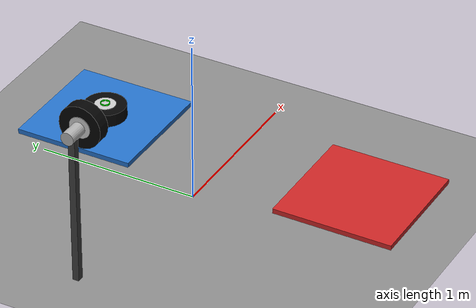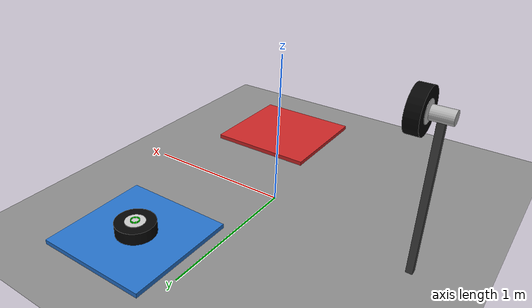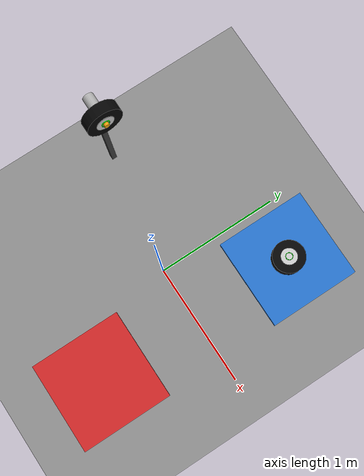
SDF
<?xml version="1.0" ?>
<sdf version="1.10">
  <world name="wheel_changing_world">
    <physics name="1ms" type="ignored">
      <max_step_size>0.001</max_step_size>
      <real_time_factor>1.0</real_time_factor>
    </physics>

    <plugin filename="gz-sim-physics-system" name="gz::sim::systems::Physics"/>
    <plugin filename="gz-sim-user-commands-system" name="gz::sim::systems::UserCommands"/>
    <plugin filename="gz-sim-scene-broadcaster-system" name="gz::sim::systems::SceneBroadcaster"/>
    <plugin filename="gz-sim-sensors-system" name="gz::sim::systems::Sensors">
      <render_engine>ogre2</render_engine>
    </plugin>

    <light type="directional" name="sun">
      <cast_shadows>true</cast_shadows>
      <pose>0 0 10 0 0 0</pose>
      <diffuse>0.8 0.8 0.8 1</diffuse>
      <specular>0.2 0.2 0.2 1</specular>
      <attenuation>
        <range>1000</range>
        <constant>0.9</constant>
        <linear>0.01</linear>
        <quadratic>0.001</quadratic>
      </attenuation>
      <direction>-0.5 0.1 -0.9</direction>
    </light>

    <model name="ground_plane">
      <static>true</static>
      <link name="link">
        <collision name="collision">
          <geometry><plane><normal>0 0 1</normal><size>6 6</size></plane></geometry>
        </collision>
        <visual name="visual">
          <geometry><plane><normal>0 0 1</normal><size>6 6</size></plane></geometry>
          <material><ambient>0.55 0.55 0.55 1</ambient><diffuse>0.55 0.55 0.55 1</diffuse></material>
        </visual>
      </link>
    </model>

    <!-- Changing station: old wheel mounted on stand in front of the manipulator. -->

    <!-- Changing station: old wheel mounted on stand in front of the manipulator. -->

    <!-- Changing station: old wheel mounted on stand in front of the manipulator. -->
    <model name="changing_station_stand">
      <static>true</static>
      <self_collide>true</self_collide>
      <pose>-0.99000 0.17000 0.45000 0.00000 0.00000 0.00000</pose>

      <link name="post">
        <visual name="post_visual">
          <geometry>
            <box>
              <size>0.04 0.04 1.00</size>
            </box>
          </geometry>
          <material>
            <ambient>0.25 0.25 0.25 1</ambient>
            <diffuse>0.25 0.25 0.25 1</diffuse>
          </material>
        </visual>
        <collision name="post_collision">
          <geometry>
            <box>
              <size>0.04 0.04 1.00</size>
            </box>
          </geometry>
        </collision>
      </link>

      <link name="hub">
        <pose>0 0 0.50 0 1.5708 0</pose>

        <visual name="hub_visual">
          <geometry>
            <cylinder>
              <radius>0.04</radius>
              <length>0.12</length>
            </cylinder>
          </geometry>
          <material>
            <ambient>0.7 0.7 0.7 1</ambient>
            <diffuse>0.7 0.7 0.7 1</diffuse>
          </material>
        </visual>

        <!-- Tiny collision only, so the visual hub does not physically block wheel removal -->
        <collision name="hub_collision">
          <geometry>
            <cylinder>
              <radius>0.002</radius>
              <length>0.005</length>
            </cylinder>
          </geometry>
        </collision>
      </link>

      <!-- BEGIN_STAND_WHEEL_DETACHABLE_PLUGIN -->
      <!-- Keeps old_wheel fixed to the stand until the gripper is ready to pull it -->
      <plugin filename="gz-sim8-detachable-joint-system"
              name="gz::sim::systems::DetachableJoint">
        <parent_link>hub</parent_link>
        <child_model>old_wheel</child_model>

        <!-- Gazebo Sim versions differ in this tag name; include both safely. -->
        <child_model_link>wheel_link</child_model_link>
        <child_link>wheel_link</child_link>

        <detach_topic>/wheel_stand_joint/detach</detach_topic>
        <attach_topic>/wheel_stand_joint/attach</attach_topic>
        <output_topic>/wheel_stand_joint/state</output_topic>
        <suppress_child_warning>true</suppress_child_warning>
      </plugin>
      <!-- END_STAND_WHEEL_DETACHABLE_PLUGIN -->

    </model>

    <model name="old_wheel">
      <static>false</static>
      <pose>-0.88000 0.17000 0.95000 0.00000 1.57080 3.14159</pose>
      <link name="wheel_link">
        <gravity>true</gravity>
        <inertial>
          <mass>0.1</mass>
          <inertia>
            <ixx>0.01</ixx>
            <iyy>0.01</iyy>
            <izz>0.01</izz>
            <ixy>0</ixy>
            <ixz>0</ixz>
            <iyz>0</iyz>
          </inertia>
        </inertial>

        <!-- Simple black tire, same previous wheel dimensions -->
        <visual name="tire_visual">
          <geometry>
            <cylinder>
              <radius>0.13</radius>
              <length>0.08</length>
            </cylinder>
          </geometry>
          <material>
            <ambient>0.02 0.02 0.02 1</ambient>
            <diffuse>0.02 0.02 0.02 1</diffuse>
          </material>
        </visual>

        <!-- Simple gray inner hub/rim visual, not a hole -->
        <visual name="rim_visual">
          <geometry>
            <cylinder>
              <radius>0.065</radius>
              <length>0.085</length>
            </cylinder>
          </geometry>
          <material>
            <ambient>0.8 0.8 0.8 1</ambient>
            <diffuse>0.8 0.8 0.8 1</diffuse>
          </material>
        </visual>

        <collision name="wheel_collision">
          <geometry>
            <cylinder>
              <radius>0.13</radius>
              <length>0.08</length>
            </cylinder>
          </geometry>
          <surface>
            <friction>
              <ode>
                <mu>10.0</mu>
                <mu2>10.0</mu2>
              </ode>
            </friction>
          </surface>
        </collision>

        <!-- BEGIN_WHEEL_ATTACHED_LUG_GUARD -->

        <visual name="wheel_lug_guard_seg_0_visual">
          <pose>0.02700 0.00000 -0.04250 0 0 0.00000</pose>
          <geometry>
            <box>
              <size>0.00400 0.01800 0.01200</size>
            </box>
          </geometry>
          <material>
            <ambient>0.0 1.0 0.0 1</ambient>
            <diffuse>0.0 1.0 0.0 1</diffuse>
          </material>
        </visual>

        <collision name="wheel_lug_guard_seg_0_collision">
          <pose>0.02700 0.00000 -0.04250 0 0 0.00000</pose>
          <geometry>
            <box>
              <size>0.00400 0.01800 0.01200</size>
            </box>
          </geometry>
        </collision>
        <visual name="wheel_lug_guard_seg_1_visual">
          <pose>0.01909 0.01909 -0.04250 0 0 0.78540</pose>
          <geometry>
            <box>
              <size>0.00400 0.01800 0.01200</size>
            </box>
          </geometry>
          <material>
            <ambient>0.0 1.0 0.0 1</ambient>
            <diffuse>0.0 1.0 0.0 1</diffuse>
          </material>
        </visual>

        <collision name="wheel_lug_guard_seg_1_collision">
          <pose>0.01909 0.01909 -0.04250 0 0 0.78540</pose>
          <geometry>
            <box>
              <size>0.00400 0.01800 0.01200</size>
            </box>
          </geometry>
        </collision>
        <visual name="wheel_lug_guard_seg_2_visual">
          <pose>0.00000 0.02700 -0.04250 0 0 1.57080</pose>
          <geometry>
            <box>
              <size>0.00400 0.01800 0.01200</size>
            </box>
          </geometry>
          <material>
            <ambient>0.0 1.0 0.0 1</ambient>
            <diffuse>0.0 1.0 0.0 1</diffuse>
          </material>
        </visual>

        <collision name="wheel_lug_guard_seg_2_collision">
          <pose>0.00000 0.02700 -0.04250 0 0 1.57080</pose>
          <geometry>
            <box>
              <size>0.00400 0.01800 0.01200</size>
            </box>
          </geometry>
        </collision>
        <visual name="wheel_lug_guard_seg_3_visual">
          <pose>-0.01909 0.01909 -0.04250 0 0 2.35619</pose>
          <geometry>
            <box>
              <size>0.00400 0.01800 0.01200</size>
            </box>
          </geometry>
          <material>
            <ambient>0.0 1.0 0.0 1</ambient>
            <diffuse>0.0 1.0 0.0 1</diffuse>
          </material>
        </visual>

        <collision name="wheel_lug_guard_seg_3_collision">
          <pose>-0.01909 0.01909 -0.04250 0 0 2.35619</pose>
          <geometry>
            <box>
              <size>0.00400 0.01800 0.01200</size>
            </box>
          </geometry>
        </collision>
        <visual name="wheel_lug_guard_seg_4_visual">
          <pose>-0.02700 0.00000 -0.04250 0 0 3.14159</pose>
          <geometry>
            <box>
              <size>0.00400 0.01800 0.01200</size>
            </box>
          </geometry>
          <material>
            <ambient>0.0 1.0 0.0 1</ambient>
            <diffuse>0.0 1.0 0.0 1</diffuse>
          </material>
        </visual>

        <collision name="wheel_lug_guard_seg_4_collision">
          <pose>-0.02700 0.00000 -0.04250 0 0 3.14159</pose>
          <geometry>
            <box>
              <size>0.00400 0.01800 0.01200</size>
            </box>
          </geometry>
        </collision>
        <visual name="wheel_lug_guard_seg_5_visual">
          <pose>-0.01909 -0.01909 -0.04250 0 0 3.92699</pose>
          <geometry>
            <box>
              <size>0.00400 0.01800 0.01200</size>
            </box>
          </geometry>
          <material>
            <ambient>0.0 1.0 0.0 1</ambient>
            <diffuse>0.0 1.0 0.0 1</diffuse>
          </material>
        </visual>

        <collision name="wheel_lug_guard_seg_5_collision">
          <pose>-0.01909 -0.01909 -0.04250 0 0 3.92699</pose>
          <geometry>
            <box>
              <size>0.00400 0.01800 0.01200</size>
            </box>
          </geometry>
        </collision>
        <visual name="wheel_lug_guard_seg_6_visual">
          <pose>-0.00000 -0.02700 -0.04250 0 0 4.71239</pose>
          <geometry>
            <box>
              <size>0.00400 0.01800 0.01200</size>
            </box>
          </geometry>
          <material>
            <ambient>0.0 1.0 0.0 1</ambient>
            <diffuse>0.0 1.0 0.0 1</diffuse>
          </material>
        </visual>

        <collision name="wheel_lug_guard_seg_6_collision">
          <pose>-0.00000 -0.02700 -0.04250 0 0 4.71239</pose>
          <geometry>
            <box>
              <size>0.00400 0.01800 0.01200</size>
            </box>
          </geometry>
        </collision>
        <visual name="wheel_lug_guard_seg_7_visual">
          <pose>0.01909 -0.01909 -0.04250 0 0 5.49779</pose>
          <geometry>
            <box>
              <size>0.00400 0.01800 0.01200</size>
            </box>
          </geometry>
          <material>
            <ambient>0.0 1.0 0.0 1</ambient>
            <diffuse>0.0 1.0 0.0 1</diffuse>
          </material>
        </visual>

        <collision name="wheel_lug_guard_seg_7_collision">
          <pose>0.01909 -0.01909 -0.04250 0 0 5.49779</pose>
          <geometry>
            <box>
              <size>0.00400 0.01800 0.01200</size>
            </box>
          </geometry>
        </collision>
        <!-- END_WHEEL_ATTACHED_LUG_GUARD -->

      </link>
</model>

    <model name="center_lug_nut">
      <static>false</static>
      <pose>-0.82750 0.17000 0.95000 0.00000 1.57080 3.14159</pose>
      <link name="nut_link">
        <gravity>false</gravity>
        <inertial>
          <mass>0.05</mass>
          <inertia>
            <ixx>0.0001</ixx>
            <iyy>0.0001</iyy>
            <izz>0.0001</izz>
            <ixy>0</ixy>
            <ixz>0</ixz>
            <iyz>0</iyz>
          </inertia>
        </inertial>

        <visual name="nut_visual">
          <geometry>
            <cylinder>
              <radius>0.018</radius>
              <length>0.025</length>
            </cylinder>
          </geometry>
          <material>
            <ambient>0.95 0.65 0.05 1</ambient>
            <diffuse>0.95 0.65 0.05 1</diffuse>
            <specular>0.30 0.20 0.05 1</specular>
          </material>
        </visual>

        <collision name="nut_collision">
          <geometry>
            <cylinder>
              <radius>0.018</radius>
              <length>0.025</length>
            </cylinder>
          </geometry>
          <surface>
            <friction>
              <ode>
                <mu>80.0</mu>
                <mu2>80.0</mu2>
              </ode>
            </friction>
            <contact>
              <ode>
                <kp>1000000.0</kp>
                <kd>100.0</kd>
                <max_vel>0.01</max_vel>
                <min_depth>0.001</min_depth>
              </ode>
            </contact>
          </surface>
        </collision>
      </link>
    </model>

<!-- Dumping zone: 120 degrees counterclockwise from changing station. -->
    <model name="dumping_zone">
      <static>true</static>
      <pose>0.45000 -0.85000 0.01500 0.00000 0.00000 -3.14159</pose>
      <link name="zone_link">
        <visual name="zone_visual">
          <geometry><box><size>0.75 0.75 0.03</size></box></geometry>
          <material><ambient>0.8 0.15 0.15 1</ambient><diffuse>0.8 0.15 0.15 1</diffuse></material>
        </visual>
        <collision name="zone_collision"><geometry><box><size>0.75 0.75 0.03</size></box></geometry></collision>
      </link>
    </model>

    <!-- Supply zone: 120 degrees clockwise from changing station. -->
    <model name="supply_zone">
      <static>true</static>
      <pose>0.45000 0.85000 0.01500 0.00000 0.00000 -3.14159</pose>
      <link name="zone_link">
        <visual name="zone_visual">
          <geometry><box><size>0.75 0.75 0.03</size></box></geometry>
          <material><ambient>0.15 0.45 0.8 1</ambient><diffuse>0.15 0.45 0.8 1</diffuse></material>
        </visual>
        <collision name="zone_collision"><geometry><box><size>0.75 0.75 0.03</size></box></geometry></collision>
      </link>

      <!-- BEGIN_NEW_WHEEL_DETACHABLE_PLUGIN -->
      <!-- Keeps new_wheel_supply fixed to the blue zone until gripper is ready -->
      <plugin filename="gz-sim8-detachable-joint-system"
              name="gz::sim::systems::DetachableJoint">
        <parent_link>zone_link</parent_link>
        <child_model>new_wheel_supply</child_model>
        <child_model_link>wheel_link</child_model_link>
        <child_link>wheel_link</child_link>

        <detach_topic>/new_wheel_joint/detach</detach_topic>
        <attach_topic>/new_wheel_joint/attach</attach_topic>
        <output_topic>/new_wheel_joint/state</output_topic>
        <suppress_child_warning>true</suppress_child_warning>
      </plugin>
      <!-- END_NEW_WHEEL_DETACHABLE_PLUGIN -->

    </model>

    <model name="new_wheel_supply">
      <static>false</static>
      <pose>0.45000 0.85000 0.07000 0.00000 0.00000 -3.14159</pose>
      <link name="wheel_link">
        <gravity>false</gravity>
        <inertial>
          <mass>0.1</mass>
          <inertia>
            <ixx>0.01</ixx>
            <iyy>0.01</iyy>
            <izz>0.01</izz>
            <ixy>0</ixy>
            <ixz>0</ixz>
            <iyz>0</iyz>
          </inertia>
        </inertial>

        <!-- Same black tire dimensions as old_wheel -->
        <visual name="tire_visual">
          <geometry>
            <cylinder>
              <radius>0.13</radius>
              <length>0.08</length>
            </cylinder>
          </geometry>
          <material>
            <ambient>0.02 0.02 0.02 1</ambient>
            <diffuse>0.02 0.02 0.02 1</diffuse>
          </material>
        </visual>

        <!-- Same gray inner rim dimensions as old_wheel -->
        <visual name="rim_visual">
          <geometry>
            <cylinder>
              <radius>0.065</radius>
              <length>0.085</length>
            </cylinder>
          </geometry>
          <material>
            <ambient>0.8 0.8 0.8 1</ambient>
            <diffuse>0.8 0.8 0.8 1</diffuse>
          </material>
        </visual>

        <collision name="wheel_collision">
          <geometry>
            <cylinder>
              <radius>0.13</radius>
              <length>0.08</length>
            </cylinder>
          </geometry>
          <surface>
            <friction>
              <ode>
                <mu>10.0</mu>
                <mu2>10.0</mu2>
              </ode>
            </friction>
          </surface>
        </collision>

        <!-- BEGIN_NEW_WHEEL_LUG_GUARD -->

        <visual name="new_wheel_lug_guard_seg_0_visual">
          <pose>0.02700 0.00000 0.04600 0 0 0.00000</pose>
          <geometry>
            <box>
              <size>0.00400 0.01800 0.01200</size>
            </box>
          </geometry>
          <material>
            <ambient>0.0 1.0 0.0 1</ambient>
            <diffuse>0.0 1.0 0.0 1</diffuse>
          </material>
        </visual>

        <collision name="new_wheel_lug_guard_seg_0_collision">
          <pose>0.02700 0.00000 0.04600 0 0 0.00000</pose>
          <geometry>
            <box>
              <size>0.00400 0.01800 0.01200</size>
            </box>
          </geometry>
        </collision>
        <visual name="new_wheel_lug_guard_seg_1_visual">
          <pose>0.01909 0.01909 0.04600 0 0 0.78540</pose>
          <geometry>
            <box>
              <size>0.00400 0.01800 0.01200</size>
            </box>
          </geometry>
          <material>
            <ambient>0.0 1.0 0.0 1</ambient>
            <diffuse>0.0 1.0 0.0 1</diffuse>
          </material>
        </visual>

        <collision name="new_wheel_lug_guard_seg_1_collision">
          <pose>0.01909 0.01909 0.04600 0 0 0.78540</pose>
          <geometry>
            <box>
              <size>0.00400 0.01800 0.01200</size>
            </box>
          </geometry>
        </collision>
        <visual name="new_wheel_lug_guard_seg_2_visual">
          <pose>0.00000 0.02700 0.04600 0 0 1.57080</pose>
          <geometry>
            <box>
              <size>0.00400 0.01800 0.01200</size>
            </box>
          </geometry>
          <material>
            <ambient>0.0 1.0 0.0 1</ambient>
            <diffuse>0.0 1.0 0.0 1</diffuse>
          </material>
        </visual>

        <collision name="new_wheel_lug_guard_seg_2_collision">
          <pose>0.00000 0.02700 0.04600 0 0 1.57080</pose>
          <geometry>
            <box>
              <size>0.00400 0.01800 0.01200</size>
            </box>
          </geometry>
        </collision>
        <visual name="new_wheel_lug_guard_seg_3_visual">
          <pose>-0.01909 0.01909 0.04600 0 0 2.35619</pose>
          <geometry>
            <box>
              <size>0.00400 0.01800 0.01200</size>
            </box>
          </geometry>
          <material>
            <ambient>0.0 1.0 0.0 1</ambient>
            <diffuse>0.0 1.0 0.0 1</diffuse>
          </material>
        </visual>

        <collision name="new_wheel_lug_guard_seg_3_collision">
          <pose>-0.01909 0.01909 0.04600 0 0 2.35619</pose>
          <geometry>
            <box>
              <size>0.00400 0.01800 0.01200</size>
            </box>
          </geometry>
        </collision>
        <visual name="new_wheel_lug_guard_seg_4_visual">
          <pose>-0.02700 0.00000 0.04600 0 0 3.14159</pose>
          <geometry>
            <box>
              <size>0.00400 0.01800 0.01200</size>
            </box>
          </geometry>
          <material>
            <ambient>0.0 1.0 0.0 1</ambient>
            <diffuse>0.0 1.0 0.0 1</diffuse>
          </material>
        </visual>

        <collision name="new_wheel_lug_guard_seg_4_collision">
          <pose>-0.02700 0.00000 0.04600 0 0 3.14159</pose>
          <geometry>
            <box>
              <size>0.00400 0.01800 0.01200</size>
            </box>
          </geometry>
        </collision>
        <visual name="new_wheel_lug_guard_seg_5_visual">
          <pose>-0.01909 -0.01909 0.04600 0 0 3.92699</pose>
          <geometry>
            <box>
              <size>0.00400 0.01800 0.01200</size>
            </box>
          </geometry>
          <material>
            <ambient>0.0 1.0 0.0 1</ambient>
            <diffuse>0.0 1.0 0.0 1</diffuse>
          </material>
        </visual>

        <collision name="new_wheel_lug_guard_seg_5_collision">
          <pose>-0.01909 -0.01909 0.04600 0 0 3.92699</pose>
          <geometry>
            <box>
              <size>0.00400 0.01800 0.01200</size>
            </box>
          </geometry>
        </collision>
        <visual name="new_wheel_lug_guard_seg_6_visual">
          <pose>-0.00000 -0.02700 0.04600 0 0 4.71239</pose>
          <geometry>
            <box>
              <size>0.00400 0.01800 0.01200</size>
            </box>
          </geometry>
          <material>
            <ambient>0.0 1.0 0.0 1</ambient>
            <diffuse>0.0 1.0 0.0 1</diffuse>
          </material>
        </visual>

        <collision name="new_wheel_lug_guard_seg_6_collision">
          <pose>-0.00000 -0.02700 0.04600 0 0 4.71239</pose>
          <geometry>
            <box>
              <size>0.00400 0.01800 0.01200</size>
            </box>
          </geometry>
        </collision>
        <visual name="new_wheel_lug_guard_seg_7_visual">
          <pose>0.01909 -0.01909 0.04600 0 0 5.49779</pose>
          <geometry>
            <box>
              <size>0.00400 0.01800 0.01200</size>
            </box>
          </geometry>
          <material>
            <ambient>0.0 1.0 0.0 1</ambient>
            <diffuse>0.0 1.0 0.0 1</diffuse>
          </material>
        </visual>

        <collision name="new_wheel_lug_guard_seg_7_collision">
          <pose>0.01909 -0.01909 0.04600 0 0 5.49779</pose>
          <geometry>
            <box>
              <size>0.00400 0.01800 0.01200</size>
            </box>
          </geometry>
        </collision>
        <!-- END_NEW_WHEEL_LUG_GUARD -->

      </link>

      <!-- BEGIN_LUG_NUT_WHEEL_DETACHABLE_PLUGIN -->
      <!-- Attaches center_lug_nut to the installed new wheel after socket seats it -->
      <plugin filename="gz-sim8-detachable-joint-system"
              name="gz::sim::systems::DetachableJoint">
        <parent_link>wheel_link</parent_link>
        <child_model>center_lug_nut</child_model>
        <child_model_link>nut_link</child_model_link>
        <child_link>nut_link</child_link>

        <detach_topic>/lug_nut_wheel_joint/detach</detach_topic>
        <attach_topic>/lug_nut_wheel_joint/attach</attach_topic>
        <output_topic>/lug_nut_wheel_joint/state</output_topic>
        <suppress_child_warning>true</suppress_child_warning>
      </plugin>
      <!-- END_LUG_NUT_WHEEL_DETACHABLE_PLUGIN -->

    </model>

  </world>
</sdf>
